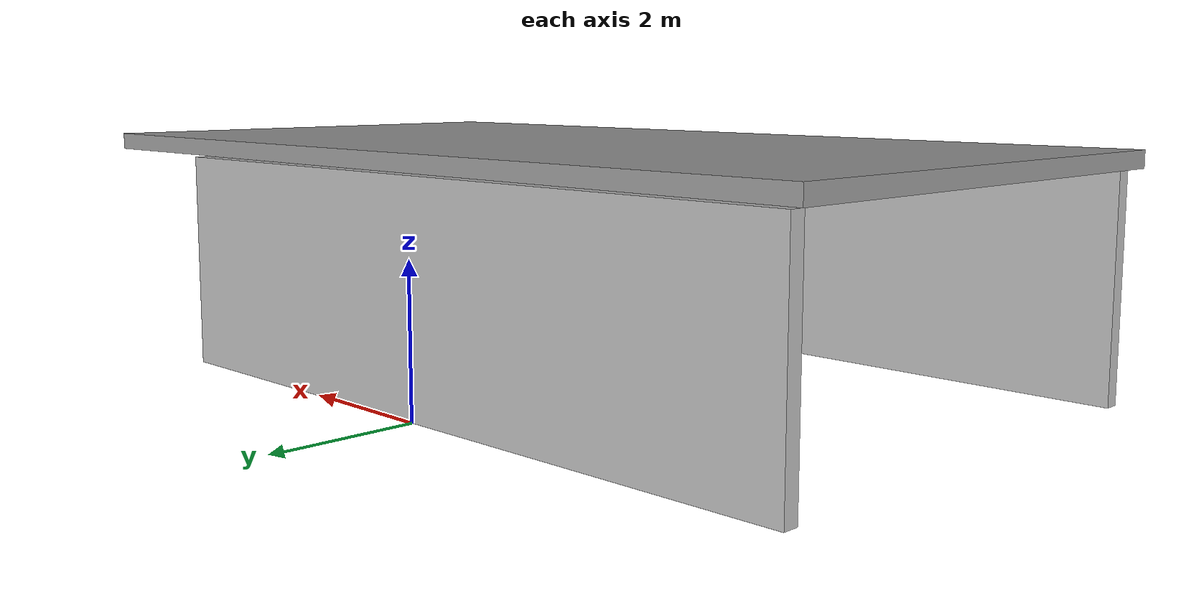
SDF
<?xml version="1.0"?>
<sdf version="1.5">
  <model name="model">
    <pose>-1.08827 -2.32025 2.24903 0 -0 0</pose>
    <link name="unit_box_2">
      <pose>0.676422 -0.058315 0.998142 0 -0 0</pose>
      <gravity>1</gravity>
      <self_collide>0</self_collide>
      <kinematic>0</kinematic>
      <visual name="unit_box_2_visual">
        <pose>0 0 0 0 -0 0</pose>
        <geometry>
          <box>
            <size>11.8887 6.43251 0.213817</size>
          </box>
        </geometry>
        <material>
          <script>
            <uri>model://hallway/materials/scripts</uri>
            <uri>model://hallway/materials/textures</uri>
            <name>Gazebo/Grey</name>
          </script>
        </material>
      </visual>
      <collision name="unit_box_2_collision">
        <geometry>
          <box>
            <size>11.8887 6.43251 0.213817</size>
          </box>
        </geometry>
        <pose>0 0 0 0 -0 0</pose>
      </collision>
    </link>
    <link name="unit_box_0_clone">
      <pose>-0.332631 -3.03844 -0.499071 0 0 -1.56509</pose>
      <gravity>1</gravity>
      <self_collide>0</self_collide>
      <kinematic>0</kinematic>
      <visual name="unit_box_0_clone_visual">
        <pose>0 0 0 0 -0 0</pose>
        <geometry>
          <box>
            <size>0.193816 9.597 2.74108</size>
          </box>
        </geometry>
        <material>
          <script>
            <uri>model://hallway/materials/scripts</uri>
            <uri>model://hallway/materials/textures</uri>
            <name>Wall/TagWall</name>
          </script>
        </material>
      </visual>
      <collision name="unit_box_0_clone_collision">
        <geometry>
          <box>
            <size>0.193816 9.597 2.74108</size>
          </box>
        </geometry>
        <pose>0 0 0 0 -0 0</pose>
      </collision>
    </link>
    <link name="unit_box_0">
      <pose>-0.343791 3.09675 -0.499071 0 0 -1.5627</pose>
      <gravity>1</gravity>
      <self_collide>0</self_collide>
      <kinematic>0</kinematic>
      <visual name="unit_box_0_visual">
        <pose>0 0 0 0 -0 0</pose>
        <geometry>
          <box>
            <size>0.193816 9.597 2.74108</size>
          </box>
        </geometry>
        <material>
          <script>
            <uri>model://hallway/materials/scripts</uri>
            <uri>model://hallway/materials/textures</uri>
            <name>Wall/TagWall</name>
          </script>
        </material>
      </visual>
      <collision name="unit_box_0_collision">
        <geometry>
          <box>
            <size>0.193816 9.597 2.74108</size>
          </box>
        </geometry>
        <pose>0 0 0 0 -0 0</pose>
      </collision>
    </link>
    <joint name="unit_box_2_JOINT_7" type="universal">
      <parent>unit_box_2</parent>
      <child>unit_box_0</child>
      <axis>
        <xyz>1 0 0</xyz>
        <use_parent_model_frame>0</use_parent_model_frame>
        <limit>
          <lower>-3.14</lower>
          <upper>3.14</upper>
        </limit>
      </axis>
      <pose>0 0 0 0 -0 0</pose>
      <axis2>
        <xyz>0 1 0</xyz>
        <use_parent_model_frame>0</use_parent_model_frame>
        <limit>
          <lower>-3.14</lower>
          <upper>3.14</upper>
        </limit>
      </axis2>
    </joint>
    <joint name="unit_box_2_JOINT_6" type="universal">
      <parent>unit_box_2</parent>
      <child>unit_box_0_clone</child>
      <axis>
        <xyz>1 0 0</xyz>
        <use_parent_model_frame>0</use_parent_model_frame>
        <limit>
          <lower>-3.14</lower>
          <upper>3.14</upper>
        </limit>
      </axis>
      <pose>0 0 0 0 -0 0</pose>
      <axis2>
        <xyz>0 1 0</xyz>
        <use_parent_model_frame>0</use_parent_model_frame>
        <limit>
          <lower>-3.14</lower>
          <upper>3.14</upper>
        </limit>
      </axis2>
    </joint>
    <joint name="unit_box_0_clone_JOINT_5" type="universal">
      <parent>unit_box_0_clone</parent>
      <child>unit_box_0</child>
      <axis>
        <xyz>1 0 0</xyz>
        <use_parent_model_frame>0</use_parent_model_frame>
        <limit>
          <lower>-3.14</lower>
          <upper>3.14</upper>
        </limit>
      </axis>
      <pose>0 0 0 0 -0 0</pose>
      <axis2>
        <xyz>0 1 0</xyz>
        <use_parent_model_frame>0</use_parent_model_frame>
        <limit>
          <lower>-3.14</lower>
          <upper>3.14</upper>
        </limit>
      </axis2>
    </joint>
    <joint name="unit_box_0_clone_JOINT_3" type="universal">
      <parent>unit_box_0_clone</parent>
      <child>unit_box_2</child>
      <axis>
        <xyz>1 0 0</xyz>
        <use_parent_model_frame>0</use_parent_model_frame>
        <limit>
          <lower>-3.14</lower>
          <upper>3.14</upper>
        </limit>
      </axis>
      <pose>0 0 0 0 -0 0</pose>
      <axis2>
        <xyz>0 1 0</xyz>
        <use_parent_model_frame>0</use_parent_model_frame>
        <limit>
          <lower>-3.14</lower>
          <upper>3.14</upper>
        </limit>
      </axis2>
    </joint>
    <joint name="unit_box_0_JOINT_2" type="universal">
      <parent>unit_box_0</parent>
      <child>unit_box_0_clone</child>
      <axis>
        <xyz>1 0 0</xyz>
        <use_parent_model_frame>0</use_parent_model_frame>
        <limit>
          <lower>-3.14</lower>
          <upper>3.14</upper>
        </limit>
      </axis>
      <pose>0 0 0 0 -0 0</pose>
      <axis2>
        <xyz>0 1 0</xyz>
        <use_parent_model_frame>0</use_parent_model_frame>
        <limit>
          <lower>-3.14</lower>
          <upper>3.14</upper>
        </limit>
      </axis2>
    </joint>
    <joint name="unit_box_0_JOINT_4" type="universal">
      <parent>unit_box_0</parent>
      <child>unit_box_2</child>
      <axis>
        <xyz>1 0 0</xyz>
        <use_parent_model_frame>0</use_parent_model_frame>
        <limit>
          <lower>-3.14</lower>
          <upper>3.14</upper>
        </limit>
      </axis>
      <pose>0 0 0 0 -0 0</pose>
      <axis2>
        <xyz>0 1 0</xyz>
        <use_parent_model_frame>0</use_parent_model_frame>
        <limit>
          <lower>-3.14</lower>
          <upper>3.14</upper>
        </limit>
      </axis2>
    </joint>
    <joint name="unit_box_2_JOINT_1" type="universal">
      <parent>unit_box_2</parent>
      <child>unit_box_0_clone</child>
      <axis>
        <xyz>1 0 0</xyz>
        <use_parent_model_frame>0</use_parent_model_frame>
        <limit>
          <lower>-3.14</lower>
          <upper>3.14</upper>
        </limit>
      </axis>
      <pose>0 0 0 0 -0 0</pose>
      <axis2>
        <xyz>0 1 0</xyz>
        <use_parent_model_frame>0</use_parent_model_frame>
        <limit>
          <lower>-3.14</lower>
          <upper>3.14</upper>
        </limit>
      </axis2>
    </joint>
    <joint name="unit_box_2_JOINT_0" type="universal">
      <parent>unit_box_2</parent>
      <child>unit_box_0</child>
      <axis>
        <xyz>1 0 0</xyz>
        <use_parent_model_frame>0</use_parent_model_frame>
        <limit>
          <lower>-3.14</lower>
          <upper>3.14</upper>
        </limit>
      </axis>
      <pose>0 0 0 0 -0 0</pose>
      <axis2>
        <xyz>0 1 0</xyz>
        <use_parent_model_frame>0</use_parent_model_frame>
        <limit>
          <lower>-3.14</lower>
          <upper>3.14</upper>
        </limit>
      </axis2>
    </joint>
    <static>1</static>
    <allow_auto_disable>1</allow_auto_disable>
  </model>
</sdf>
